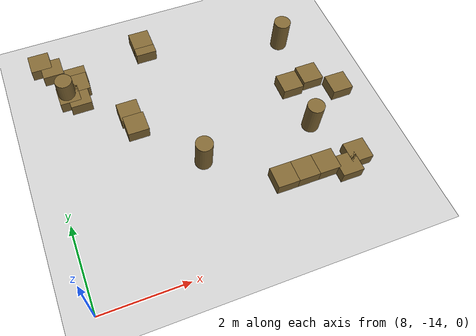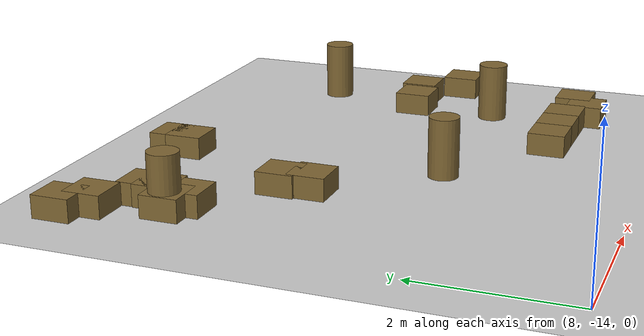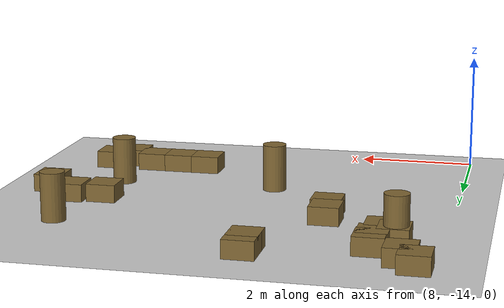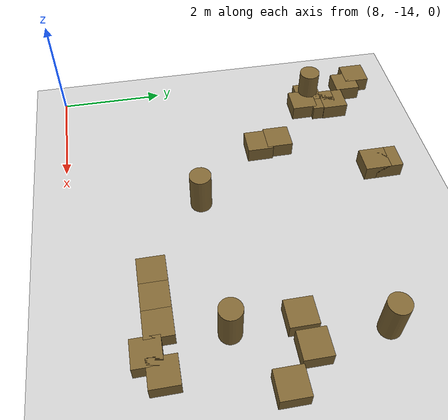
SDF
<sdf version="1.7">
 <world name="default">
  <model name="ground_plane">
   <static>1</static>
   <link name="link">
    <collision name="collision">
     <geometry><plane><normal>0 0 1</normal><size>100 100</size></plane></geometry>
     <surface><friction><ode><mu>100</mu><mu2>50</mu2></ode></friction></surface>
    </collision>
    <visual name="visual">
     <cast_shadows>0</cast_shadows>
     <geometry><plane><normal>0 0 1</normal><size>100 100</size></plane></geometry>
     <material>
      <script><uri>file://media/materials/scripts/gazebo.material</uri><name>Gazebo/Grey</name></script>
     </material>
    </visual>
   </link>
  </model>
  <model name="mini_cylinder_0_clone_0_clone_0">
   <link name="link">
    <inertial>
     <mass>1</mass>
     <inertia><ixx>0.145833</ixx><ixy>0</ixy><ixz>0</ixz><iyy>0.145833</iyy><iyz>0</iyz><izz>0.125</izz></inertia>
    </inertial>
    <visual name="visual">
     <geometry><cylinder><radius>0.2</radius><length>0.8</length></cylinder></geometry>
     <material>
      <script><name>Gazebo/Grey</name><uri>file://media/materials/scripts/gazebo.material</uri></script>
      <shader type="vertex"><normal_map>__default__</normal_map></shader>
      <ambient>0.5 0.4 0.2 1</ambient>
      <diffuse>0.7 0.7 0.7 1</diffuse>
      <specular>0.01 0.01 0.01 1</specular>
      <emissive>0 0 0 1</emissive>
     </material>
    </visual>
    <collision name="collision">
     <geometry><cylinder><radius>0.2</radius><length>0.8</length></cylinder></geometry>
     <surface>
      <friction>
       <ode><mu>1</mu><mu2>1</mu2><fdir1>0 0 0</fdir1><slip1>0</slip1><slip2>0</slip2></ode>
       <torsional>
        <coefficient>1</coefficient>
        <patch_radius>0</patch_radius>
        <surface_radius>0</surface_radius>
        <use_patch_radius>1</use_patch_radius>
        <ode><slip>0</slip></ode>
       </torsional>
      </friction>
      <bounce><restitution_coefficient>0</restitution_coefficient><threshold>1e+06</threshold></bounce>
      <contact>
       <collide_without_contact>0</collide_without_contact>
       <collide_without_contact_bitmask>1</collide_without_contact_bitmask>
       <collide_bitmask>1</collide_bitmask>
       <ode>
        <soft_cfm>0</soft_cfm>
        <soft_erp>0.2</soft_erp>
        <kp>1e+13</kp>
        <kd>1</kd>
        <max_vel>0.01</max_vel>
        <min_depth>0</min_depth>
       </ode>
       <bullet>
        <split_impulse>1</split_impulse>
        <split_impulse_penetration_threshold>-0.01</split_impulse_penetration_threshold>
        <soft_cfm>0</soft_cfm>
        <soft_erp>0.2</soft_erp>
        <kp>1e+13</kp>
        <kd>1</kd>
       </bullet>
      </contact>
     </surface>
    </collision>
   </link>
   <static>1</static>
   <pose>8.7545 -8.82263 0.4 0 -0 0</pose>
  </model>
  <model name="mini_cylinder_0_clone_0_clone_1">
   <link name="link">
    <inertial>
     <mass>1</mass>
     <inertia><ixx>0.145833</ixx><ixy>0</ixy><ixz>0</ixz><iyy>0.145833</iyy><iyz>0</iyz><izz>0.125</izz></inertia>
    </inertial>
    <visual name="visual">
     <geometry><cylinder><radius>0.2</radius><length>0.8</length></cylinder></geometry>
     <material>
      <script><name>Gazebo/Grey</name><uri>file://media/materials/scripts/gazebo.material</uri></script>
      <shader type="vertex"><normal_map>__default__</normal_map></shader>
      <ambient>0.5 0.4 0.2 1</ambient>
      <diffuse>0.7 0.7 0.7 1</diffuse>
      <specular>0.01 0.01 0.01 1</specular>
      <emissive>0 0 0 1</emissive>
     </material>
    </visual>
    <collision name="collision">
     <geometry><cylinder><radius>0.2</radius><length>0.8</length></cylinder></geometry>
     <surface>
      <friction>
       <ode><mu>1</mu><mu2>1</mu2><fdir1>0 0 0</fdir1><slip1>0</slip1><slip2>0</slip2></ode>
       <torsional>
        <coefficient>1</coefficient>
        <patch_radius>0</patch_radius>
        <surface_radius>0</surface_radius>
        <use_patch_radius>1</use_patch_radius>
        <ode><slip>0</slip></ode>
       </torsional>
      </friction>
      <bounce><restitution_coefficient>0</restitution_coefficient><threshold>1e+06</threshold></bounce>
      <contact>
       <collide_without_contact>0</collide_without_contact>
       <collide_without_contact_bitmask>1</collide_without_contact_bitmask>
       <collide_bitmask>1</collide_bitmask>
       <ode>
        <soft_cfm>0</soft_cfm>
        <soft_erp>0.2</soft_erp>
        <kp>1e+13</kp>
        <kd>1</kd>
        <max_vel>0.01</max_vel>
        <min_depth>0</min_depth>
       </ode>
       <bullet>
        <split_impulse>1</split_impulse>
        <split_impulse_penetration_threshold>-0.01</split_impulse_penetration_threshold>
        <soft_cfm>0</soft_cfm>
        <soft_erp>0.2</soft_erp>
        <kp>1e+13</kp>
        <kd>1</kd>
       </bullet>
      </contact>
     </surface>
    </collision>
   </link>
   <static>1</static>
   <pose>14.2436 -8.91515 0.4 0 -0 0</pose>
  </model>
  <model name="mini_cylinder_0_clone_0_clone_2">
   <link name="link">
    <inertial>
     <mass>1</mass>
     <inertia><ixx>0.145833</ixx><ixy>0</ixy><ixz>0</ixz><iyy>0.145833</iyy><iyz>0</iyz><izz>0.125</izz></inertia>
    </inertial>
    <visual name="visual">
     <geometry><cylinder><radius>0.2</radius><length>0.8</length></cylinder></geometry>
     <material>
      <script><name>Gazebo/Grey</name><uri>file://media/materials/scripts/gazebo.material</uri></script>
      <shader type="vertex"><normal_map>__default__</normal_map></shader>
      <ambient>0.5 0.4 0.2 1</ambient>
      <diffuse>0.7 0.7 0.7 1</diffuse>
      <specular>0.01 0.01 0.01 1</specular>
      <emissive>0 0 0 1</emissive>
     </material>
    </visual>
    <collision name="collision">
     <geometry><cylinder><radius>0.2</radius><length>0.8</length></cylinder></geometry>
     <surface>
      <friction>
       <ode><mu>1</mu><mu2>1</mu2><fdir1>0 0 0</fdir1><slip1>0</slip1><slip2>0</slip2></ode>
       <torsional>
        <coefficient>1</coefficient>
        <patch_radius>0</patch_radius>
        <surface_radius>0</surface_radius>
        <use_patch_radius>1</use_patch_radius>
        <ode><slip>0</slip></ode>
       </torsional>
      </friction>
      <bounce><restitution_coefficient>0</restitution_coefficient><threshold>1e+06</threshold></bounce>
      <contact>
       <collide_without_contact>0</collide_without_contact>
       <collide_without_contact_bitmask>1</collide_without_contact_bitmask>
       <collide_bitmask>1</collide_bitmask>
       <ode>
        <soft_cfm>0</soft_cfm>
        <soft_erp>0.2</soft_erp>
        <kp>1e+13</kp>
        <kd>1</kd>
        <max_vel>0.01</max_vel>
        <min_depth>0</min_depth>
       </ode>
       <bullet>
        <split_impulse>1</split_impulse>
        <split_impulse_penetration_threshold>-0.01</split_impulse_penetration_threshold>
        <soft_cfm>0</soft_cfm>
        <soft_erp>0.2</soft_erp>
        <kp>1e+13</kp>
        <kd>1</kd>
       </bullet>
      </contact>
     </surface>
    </collision>
   </link>
   <static>1</static>
   <pose>13.8924 -11.4476 0.4 0 -0 0</pose>
  </model>
  <model name="mini_box_clone_clone_3_clone_0">
   <link name="link">
    <inertial>
     <mass>1</mass>
     <inertia>
      <ixx>0.166667</ixx>
      <ixy>0</ixy>
      <ixz>0</ixz>
      <iyy>0.166667</iyy>
      <iyz>0</iyz>
      <izz>0.166667</izz>
     </inertia>
    </inertial>
    <visual name="visual">
     <geometry><box><size>0.5 0.5 0.3</size></box></geometry>
     <material>
      <script><name>Gazebo/Grey</name><uri>file://media/materials/scripts/gazebo.material</uri></script>
      <shader type="vertex"><normal_map>__default__</normal_map></shader>
      <ambient>0.5 0.4 0.2 1</ambient>
      <diffuse>0.7 0.7 0.7 1</diffuse>
      <specular>0.01 0.01 0.01 1</specular>
      <emissive>0 0 0 1</emissive>
     </material>
    </visual>
    <collision name="collision">
     <geometry><box><size>0.5 0.5 0.3</size></box></geometry>
     <surface>
      <friction>
       <ode><mu>1</mu><mu2>1</mu2><fdir1>0 0 0</fdir1><slip1>0</slip1><slip2>0</slip2></ode>
       <torsional>
        <coefficient>1</coefficient>
        <patch_radius>0</patch_radius>
        <surface_radius>0</surface_radius>
        <use_patch_radius>1</use_patch_radius>
        <ode><slip>0</slip></ode>
       </torsional>
      </friction>
      <bounce><restitution_coefficient>0</restitution_coefficient><threshold>1e+06</threshold></bounce>
      <contact>
       <collide_without_contact>0</collide_without_contact>
       <collide_without_contact_bitmask>1</collide_without_contact_bitmask>
       <collide_bitmask>1</collide_bitmask>
       <ode>
        <soft_cfm>0</soft_cfm>
        <soft_erp>0.2</soft_erp>
        <kp>1e+13</kp>
        <kd>1</kd>
        <max_vel>0.01</max_vel>
        <min_depth>0</min_depth>
       </ode>
       <bullet>
        <split_impulse>1</split_impulse>
        <split_impulse_penetration_threshold>-0.01</split_impulse_penetration_threshold>
        <soft_cfm>0</soft_cfm>
        <soft_erp>0.2</soft_erp>
        <kp>1e+13</kp>
        <kd>1</kd>
       </bullet>
      </contact>
     </surface>
    </collision>
   </link>
   <static>1</static>
   <pose>10.0339 -10.1728 0.15 0 -0 0</pose>
  </model>
  <model name="mini_box_clone_clone_3_clone_1">
   <link name="link">
    <inertial>
     <mass>1</mass>
     <inertia>
      <ixx>0.166667</ixx>
      <ixy>0</ixy>
      <ixz>0</ixz>
      <iyy>0.166667</iyy>
      <iyz>0</iyz>
      <izz>0.166667</izz>
     </inertia>
    </inertial>
    <visual name="visual">
     <geometry><box><size>0.5 0.5 0.3</size></box></geometry>
     <material>
      <script><name>Gazebo/Grey</name><uri>file://media/materials/scripts/gazebo.material</uri></script>
      <shader type="vertex"><normal_map>__default__</normal_map></shader>
      <ambient>0.5 0.4 0.2 1</ambient>
      <diffuse>0.7 0.7 0.7 1</diffuse>
      <specular>0.01 0.01 0.01 1</specular>
      <emissive>0 0 0 1</emissive>
     </material>
    </visual>
    <collision name="collision">
     <geometry><box><size>0.5 0.5 0.3</size></box></geometry>
     <surface>
      <friction>
       <ode><mu>1</mu><mu2>1</mu2><fdir1>0 0 0</fdir1><slip1>0</slip1><slip2>0</slip2></ode>
       <torsional>
        <coefficient>1</coefficient>
        <patch_radius>0</patch_radius>
        <surface_radius>0</surface_radius>
        <use_patch_radius>1</use_patch_radius>
        <ode><slip>0</slip></ode>
       </torsional>
      </friction>
      <bounce><restitution_coefficient>0</restitution_coefficient><threshold>1e+06</threshold></bounce>
      <contact>
       <collide_without_contact>0</collide_without_contact>
       <collide_without_contact_bitmask>1</collide_without_contact_bitmask>
       <collide_bitmask>1</collide_bitmask>
       <ode>
        <soft_cfm>0</soft_cfm>
        <soft_erp>0.2</soft_erp>
        <kp>1e+13</kp>
        <kd>1</kd>
        <max_vel>0.01</max_vel>
        <min_depth>0</min_depth>
       </ode>
       <bullet>
        <split_impulse>1</split_impulse>
        <split_impulse_penetration_threshold>-0.01</split_impulse_penetration_threshold>
        <soft_cfm>0</soft_cfm>
        <soft_erp>0.2</soft_erp>
        <kp>1e+13</kp>
        <kd>1</kd>
       </bullet>
      </contact>
     </surface>
    </collision>
   </link>
   <static>1</static>
   <pose>14.4187 -10.2264 0.15 0 -0 0</pose>
  </model>
  <model name="mini_cylinder_0_clone_0_clone_clone_0">
   <link name="link">
    <inertial>
     <mass>1</mass>
     <inertia><ixx>0.145833</ixx><ixy>0</ixy><ixz>0</ixz><iyy>0.145833</iyy><iyz>0</iyz><izz>0.125</izz></inertia>
    </inertial>
    <visual name="visual">
     <geometry><cylinder><radius>0.2</radius><length>0.8</length></cylinder></geometry>
     <material>
      <script><name>Gazebo/Grey</name><uri>file://media/materials/scripts/gazebo.material</uri></script>
      <shader type="vertex"><normal_map>__default__</normal_map></shader>
      <ambient>0.5 0.4 0.2 1</ambient>
      <diffuse>0.7 0.7 0.7 1</diffuse>
      <specular>0.01 0.01 0.01 1</specular>
      <emissive>0 0 0 1</emissive>
     </material>
    </visual>
    <collision name="collision">
     <geometry><cylinder><radius>0.2</radius><length>0.8</length></cylinder></geometry>
     <surface>
      <friction>
       <ode><mu>1</mu><mu2>1</mu2><fdir1>0 0 0</fdir1><slip1>0</slip1><slip2>0</slip2></ode>
       <torsional>
        <coefficient>1</coefficient>
        <patch_radius>0</patch_radius>
        <surface_radius>0</surface_radius>
        <use_patch_radius>1</use_patch_radius>
        <ode><slip>0</slip></ode>
       </torsional>
      </friction>
      <bounce><restitution_coefficient>0</restitution_coefficient><threshold>1e+06</threshold></bounce>
      <contact>
       <collide_without_contact>0</collide_without_contact>
       <collide_without_contact_bitmask>1</collide_without_contact_bitmask>
       <collide_bitmask>1</collide_bitmask>
       <ode>
        <soft_cfm>0</soft_cfm>
        <soft_erp>0.2</soft_erp>
        <kp>1e+13</kp>
        <kd>1</kd>
        <max_vel>0.01</max_vel>
        <min_depth>0</min_depth>
       </ode>
       <bullet>
        <split_impulse>1</split_impulse>
        <split_impulse_penetration_threshold>-0.01</split_impulse_penetration_threshold>
        <soft_cfm>0</soft_cfm>
        <soft_erp>0.2</soft_erp>
        <kp>1e+13</kp>
        <kd>1</kd>
       </bullet>
      </contact>
     </surface>
    </collision>
   </link>
   <static>1</static>
   <pose>11.1967 -11.5076 0.4 0 -0 0</pose>
  </model>
  <model name="mini_box_clone_clone_0_clone_8">
   <link name="link">
    <inertial>
     <mass>1</mass>
     <inertia>
      <ixx>0.166667</ixx>
      <ixy>0</ixy>
      <ixz>0</ixz>
      <iyy>0.166667</iyy>
      <iyz>0</iyz>
      <izz>0.166667</izz>
     </inertia>
    </inertial>
    <visual name="visual">
     <geometry><box><size>0.5 0.5 0.3</size></box></geometry>
     <material>
      <script><name>Gazebo/Grey</name><uri>file://media/materials/scripts/gazebo.material</uri></script>
      <shader type="vertex"><normal_map>__default__</normal_map></shader>
      <ambient>0.5 0.4 0.2 1</ambient>
      <diffuse>0.7 0.7 0.7 1</diffuse>
      <specular>0.01 0.01 0.01 1</specular>
      <emissive>0 0 0 1</emissive>
     </material>
    </visual>
    <collision name="collision">
     <geometry><box><size>0.5 0.5 0.3</size></box></geometry>
     <surface>
      <friction>
       <ode><mu>1</mu><mu2>1</mu2><fdir1>0 0 0</fdir1><slip1>0</slip1><slip2>0</slip2></ode>
       <torsional>
        <coefficient>1</coefficient>
        <patch_radius>0</patch_radius>
        <surface_radius>0</surface_radius>
        <use_patch_radius>1</use_patch_radius>
        <ode><slip>0</slip></ode>
       </torsional>
      </friction>
      <bounce><restitution_coefficient>0</restitution_coefficient><threshold>1e+06</threshold></bounce>
      <contact>
       <collide_without_contact>0</collide_without_contact>
       <collide_without_contact_bitmask>1</collide_without_contact_bitmask>
       <collide_bitmask>1</collide_bitmask>
       <ode>
        <soft_cfm>0</soft_cfm>
        <soft_erp>0.2</soft_erp>
        <kp>1e+13</kp>
        <kd>1</kd>
        <max_vel>0.01</max_vel>
        <min_depth>0</min_depth>
       </ode>
       <bullet>
        <split_impulse>1</split_impulse>
        <split_impulse_penetration_threshold>-0.01</split_impulse_penetration_threshold>
        <soft_cfm>0</soft_cfm>
        <soft_erp>0.2</soft_erp>
        <kp>1e+13</kp>
        <kd>1</kd>
       </bullet>
      </contact>
     </surface>
    </collision>
   </link>
   <static>1</static>
   <pose>10.8996 -7.81183 0.15 0 -0 0</pose>
  </model>
  <model name="mini_box_clone_clone_0_clone_9">
   <link name="link">
    <inertial>
     <mass>1</mass>
     <inertia>
      <ixx>0.166667</ixx>
      <ixy>0</ixy>
      <ixz>0</ixz>
      <iyy>0.166667</iyy>
      <iyz>0</iyz>
      <izz>0.166667</izz>
     </inertia>
    </inertial>
    <visual name="visual">
     <geometry><box><size>0.5 0.5 0.3</size></box></geometry>
     <material>
      <script><name>Gazebo/Grey</name><uri>file://media/materials/scripts/gazebo.material</uri></script>
      <shader type="vertex"><normal_map>__default__</normal_map></shader>
      <ambient>0.5 0.4 0.2 1</ambient>
      <diffuse>0.7 0.7 0.7 1</diffuse>
      <specular>0.01 0.01 0.01 1</specular>
      <emissive>0 0 0 1</emissive>
     </material>
    </visual>
    <collision name="collision">
     <geometry><box><size>0.5 0.5 0.3</size></box></geometry>
     <surface>
      <friction>
       <ode><mu>1</mu><mu2>1</mu2><fdir1>0 0 0</fdir1><slip1>0</slip1><slip2>0</slip2></ode>
       <torsional>
        <coefficient>1</coefficient>
        <patch_radius>0</patch_radius>
        <surface_radius>0</surface_radius>
        <use_patch_radius>1</use_patch_radius>
        <ode><slip>0</slip></ode>
       </torsional>
      </friction>
      <bounce><restitution_coefficient>0</restitution_coefficient><threshold>1e+06</threshold></bounce>
      <contact>
       <collide_without_contact>0</collide_without_contact>
       <collide_without_contact_bitmask>1</collide_without_contact_bitmask>
       <collide_bitmask>1</collide_bitmask>
       <ode>
        <soft_cfm>0</soft_cfm>
        <soft_erp>0.2</soft_erp>
        <kp>1e+13</kp>
        <kd>1</kd>
        <max_vel>0.01</max_vel>
        <min_depth>0</min_depth>
       </ode>
       <bullet>
        <split_impulse>1</split_impulse>
        <split_impulse_penetration_threshold>-0.01</split_impulse_penetration_threshold>
        <soft_cfm>0</soft_cfm>
        <soft_erp>0.2</soft_erp>
        <kp>1e+13</kp>
        <kd>1</kd>
       </bullet>
      </contact>
     </surface>
    </collision>
   </link>
   <static>1</static>
   <pose>10.8996 -8.0453 0.15 0 -0 0</pose>
  </model>
  <model name="mini_box_clone_clone_0_clone_10">
   <link name="link">
    <inertial>
     <mass>1</mass>
     <inertia>
      <ixx>0.166667</ixx>
      <ixy>0</ixy>
      <ixz>0</ixz>
      <iyy>0.166667</iyy>
      <iyz>0</iyz>
      <izz>0.166667</izz>
     </inertia>
    </inertial>
    <visual name="visual">
     <geometry><box><size>0.5 0.5 0.3</size></box></geometry>
     <material>
      <script><name>Gazebo/Grey</name><uri>file://media/materials/scripts/gazebo.material</uri></script>
      <shader type="vertex"><normal_map>__default__</normal_map></shader>
      <ambient>0.5 0.4 0.2 1</ambient>
      <diffuse>0.7 0.7 0.7 1</diffuse>
      <specular>0.01 0.01 0.01 1</specular>
      <emissive>0 0 0 1</emissive>
     </material>
    </visual>
    <collision name="collision">
     <geometry><box><size>0.5 0.5 0.3</size></box></geometry>
     <surface>
      <friction>
       <ode><mu>1</mu><mu2>1</mu2><fdir1>0 0 0</fdir1><slip1>0</slip1><slip2>0</slip2></ode>
       <torsional>
        <coefficient>1</coefficient>
        <patch_radius>0</patch_radius>
        <surface_radius>0</surface_radius>
        <use_patch_radius>1</use_patch_radius>
        <ode><slip>0</slip></ode>
       </torsional>
      </friction>
      <bounce><restitution_coefficient>0</restitution_coefficient><threshold>1e+06</threshold></bounce>
      <contact>
       <collide_without_contact>0</collide_without_contact>
       <collide_without_contact_bitmask>1</collide_without_contact_bitmask>
       <collide_bitmask>1</collide_bitmask>
       <ode>
        <soft_cfm>0</soft_cfm>
        <soft_erp>0.2</soft_erp>
        <kp>1e+13</kp>
        <kd>1</kd>
        <max_vel>0.01</max_vel>
        <min_depth>0</min_depth>
       </ode>
       <bullet>
        <split_impulse>1</split_impulse>
        <split_impulse_penetration_threshold>-0.01</split_impulse_penetration_threshold>
        <soft_cfm>0</soft_cfm>
        <soft_erp>0.2</soft_erp>
        <kp>1e+13</kp>
        <kd>1</kd>
       </bullet>
      </contact>
     </surface>
    </collision>
   </link>
   <static>1</static>
   <pose>8.78441 -8.84203 0.15 0 -0 0</pose>
  </model>
  <model name="mini_box_clone_clone_0_clone_11">
   <link name="link">
    <inertial>
     <mass>1</mass>
     <inertia>
      <ixx>0.166667</ixx>
      <ixy>0</ixy>
      <ixz>0</ixz>
      <iyy>0.166667</iyy>
      <iyz>0</iyz>
      <izz>0.166667</izz>
     </inertia>
    </inertial>
    <visual name="visual">
     <geometry><box><size>0.5 0.5 0.3</size></box></geometry>
     <material>
      <script><name>Gazebo/Grey</name><uri>file://media/materials/scripts/gazebo.material</uri></script>
      <shader type="vertex"><normal_map>__default__</normal_map></shader>
      <ambient>0.5 0.4 0.2 1</ambient>
      <diffuse>0.7 0.7 0.7 1</diffuse>
      <specular>0.01 0.01 0.01 1</specular>
      <emissive>0 0 0 1</emissive>
     </material>
    </visual>
    <collision name="collision">
     <geometry><box><size>0.5 0.5 0.3</size></box></geometry>
     <surface>
      <friction>
       <ode><mu>1</mu><mu2>1</mu2><fdir1>0 0 0</fdir1><slip1>0</slip1><slip2>0</slip2></ode>
       <torsional>
        <coefficient>1</coefficient>
        <patch_radius>0</patch_radius>
        <surface_radius>0</surface_radius>
        <use_patch_radius>1</use_patch_radius>
        <ode><slip>0</slip></ode>
       </torsional>
      </friction>
      <bounce><restitution_coefficient>0</restitution_coefficient><threshold>1e+06</threshold></bounce>
      <contact>
       <collide_without_contact>0</collide_without_contact>
       <collide_without_contact_bitmask>1</collide_without_contact_bitmask>
       <collide_bitmask>1</collide_bitmask>
       <ode>
        <soft_cfm>0</soft_cfm>
        <soft_erp>0.2</soft_erp>
        <kp>1e+13</kp>
        <kd>1</kd>
        <max_vel>0.01</max_vel>
        <min_depth>0</min_depth>
       </ode>
       <bullet>
        <split_impulse>1</split_impulse>
        <split_impulse_penetration_threshold>-0.01</split_impulse_penetration_threshold>
        <soft_cfm>0</soft_cfm>
        <soft_erp>0.2</soft_erp>
        <kp>1e+13</kp>
        <kd>1</kd>
       </bullet>
      </contact>
     </surface>
    </collision>
   </link>
   <static>1</static>
   <pose>9 -9 0.15 0 -0 0</pose>
  </model>
  <model name="mini_box_clone_clone_0_clone_12">
   <link name="link">
    <inertial>
     <mass>1</mass>
     <inertia>
      <ixx>0.166667</ixx>
      <ixy>0</ixy>
      <ixz>0</ixz>
      <iyy>0.166667</iyy>
      <iyz>0</iyz>
      <izz>0.166667</izz>
     </inertia>
    </inertial>
    <visual name="visual">
     <geometry><box><size>0.5 0.5 0.3</size></box></geometry>
     <material>
      <script><name>Gazebo/Grey</name><uri>file://media/materials/scripts/gazebo.material</uri></script>
      <shader type="vertex"><normal_map>__default__</normal_map></shader>
      <ambient>0.5 0.4 0.2 1</ambient>
      <diffuse>0.7 0.7 0.7 1</diffuse>
      <specular>0.01 0.01 0.01 1</specular>
      <emissive>0 0 0 1</emissive>
     </material>
    </visual>
    <collision name="collision">
     <geometry><box><size>0.5 0.5 0.3</size></box></geometry>
     <surface>
      <friction>
       <ode><mu>1</mu><mu2>1</mu2><fdir1>0 0 0</fdir1><slip1>0</slip1><slip2>0</slip2></ode>
       <torsional>
        <coefficient>1</coefficient>
        <patch_radius>0</patch_radius>
        <surface_radius>0</surface_radius>
        <use_patch_radius>1</use_patch_radius>
        <ode><slip>0</slip></ode>
       </torsional>
      </friction>
      <bounce><restitution_coefficient>0</restitution_coefficient><threshold>1e+06</threshold></bounce>
      <contact>
       <collide_without_contact>0</collide_without_contact>
       <collide_without_contact_bitmask>1</collide_without_contact_bitmask>
       <collide_bitmask>1</collide_bitmask>
       <ode>
        <soft_cfm>0</soft_cfm>
        <soft_erp>0.2</soft_erp>
        <kp>1e+13</kp>
        <kd>1</kd>
        <max_vel>0.01</max_vel>
        <min_depth>0</min_depth>
       </ode>
       <bullet>
        <split_impulse>1</split_impulse>
        <split_impulse_penetration_threshold>-0.01</split_impulse_penetration_threshold>
        <soft_cfm>0</soft_cfm>
        <soft_erp>0.2</soft_erp>
        <kp>1e+13</kp>
        <kd>1</kd>
       </bullet>
      </contact>
     </surface>
    </collision>
   </link>
   <static>1</static>
   <pose>9.07285 -8.58094 0.15 0 -0 0</pose>
  </model>
  <model name="mini_box_clone_clone_0_clone_13">
   <link name="link">
    <inertial>
     <mass>1</mass>
     <inertia>
      <ixx>0.166667</ixx>
      <ixy>0</ixy>
      <ixz>0</ixz>
      <iyy>0.166667</iyy>
      <iyz>0</iyz>
      <izz>0.166667</izz>
     </inertia>
    </inertial>
    <visual name="visual">
     <geometry><box><size>0.5 0.5 0.3</size></box></geometry>
     <material>
      <script><name>Gazebo/Grey</name><uri>file://media/materials/scripts/gazebo.material</uri></script>
      <shader type="vertex"><normal_map>__default__</normal_map></shader>
      <ambient>0.5 0.4 0.2 1</ambient>
      <diffuse>0.7 0.7 0.7 1</diffuse>
      <specular>0.01 0.01 0.01 1</specular>
      <emissive>0 0 0 1</emissive>
     </material>
    </visual>
    <collision name="collision">
     <geometry><box><size>0.5 0.5 0.3</size></box></geometry>
     <surface>
      <friction>
       <ode><mu>1</mu><mu2>1</mu2><fdir1>0 0 0</fdir1><slip1>0</slip1><slip2>0</slip2></ode>
       <torsional>
        <coefficient>1</coefficient>
        <patch_radius>0</patch_radius>
        <surface_radius>0</surface_radius>
        <use_patch_radius>1</use_patch_radius>
        <ode><slip>0</slip></ode>
       </torsional>
      </friction>
      <bounce><restitution_coefficient>0</restitution_coefficient><threshold>1e+06</threshold></bounce>
      <contact>
       <collide_without_contact>0</collide_without_contact>
       <collide_without_contact_bitmask>1</collide_without_contact_bitmask>
       <collide_bitmask>1</collide_bitmask>
       <ode>
        <soft_cfm>0</soft_cfm>
        <soft_erp>0.2</soft_erp>
        <kp>1e+13</kp>
        <kd>1</kd>
        <max_vel>0.01</max_vel>
        <min_depth>0</min_depth>
       </ode>
       <bullet>
        <split_impulse>1</split_impulse>
        <split_impulse_penetration_threshold>-0.01</split_impulse_penetration_threshold>
        <soft_cfm>0</soft_cfm>
        <soft_erp>0.2</soft_erp>
        <kp>1e+13</kp>
        <kd>1</kd>
       </bullet>
      </contact>
     </surface>
    </collision>
   </link>
   <static>1</static>
   <pose>9.08646 -8.36108 0.15 0 -0 0</pose>
  </model>
  <model name="mini_box_clone_clone_0_clone_14">
   <link name="link">
    <inertial>
     <mass>1</mass>
     <inertia>
      <ixx>0.166667</ixx>
      <ixy>0</ixy>
      <ixz>0</ixz>
      <iyy>0.166667</iyy>
      <iyz>0</iyz>
      <izz>0.166667</izz>
     </inertia>
    </inertial>
    <visual name="visual">
     <geometry><box><size>0.5 0.5 0.3</size></box></geometry>
     <material>
      <script><name>Gazebo/Grey</name><uri>file://media/materials/scripts/gazebo.material</uri></script>
      <shader type="vertex"><normal_map>__default__</normal_map></shader>
      <ambient>0.5 0.4 0.2 1</ambient>
      <diffuse>0.7 0.7 0.7 1</diffuse>
      <specular>0.01 0.01 0.01 1</specular>
      <emissive>0 0 0 1</emissive>
     </material>
    </visual>
    <collision name="collision">
     <geometry><box><size>0.5 0.5 0.3</size></box></geometry>
     <surface>
      <friction>
       <ode><mu>1</mu><mu2>1</mu2><fdir1>0 0 0</fdir1><slip1>0</slip1><slip2>0</slip2></ode>
       <torsional>
        <coefficient>1</coefficient>
        <patch_radius>0</patch_radius>
        <surface_radius>0</surface_radius>
        <use_patch_radius>1</use_patch_radius>
        <ode><slip>0</slip></ode>
       </torsional>
      </friction>
      <bounce><restitution_coefficient>0</restitution_coefficient><threshold>1e+06</threshold></bounce>
      <contact>
       <collide_without_contact>0</collide_without_contact>
       <collide_without_contact_bitmask>1</collide_without_contact_bitmask>
       <collide_bitmask>1</collide_bitmask>
       <ode>
        <soft_cfm>0</soft_cfm>
        <soft_erp>0.2</soft_erp>
        <kp>1e+13</kp>
        <kd>1</kd>
        <max_vel>0.01</max_vel>
        <min_depth>0</min_depth>
       </ode>
       <bullet>
        <split_impulse>1</split_impulse>
        <split_impulse_penetration_threshold>-0.01</split_impulse_penetration_threshold>
        <soft_cfm>0</soft_cfm>
        <soft_erp>0.2</soft_erp>
        <kp>1e+13</kp>
        <kd>1</kd>
       </bullet>
      </contact>
     </surface>
    </collision>
   </link>
   <static>1</static>
   <pose>9.99311 -9.77586 0.15 0 -0 0</pose>
  </model>
  <model name="mini_box_clone_clone_0_clone_18">
   <link name="link">
    <inertial>
     <mass>1</mass>
     <inertia>
      <ixx>0.166667</ixx>
      <ixy>0</ixy>
      <ixz>0</ixz>
      <iyy>0.166667</iyy>
      <iyz>0</iyz>
      <izz>0.166667</izz>
     </inertia>
    </inertial>
    <visual name="visual">
     <geometry><box><size>0.5 0.5 0.3</size></box></geometry>
     <material>
      <script><name>Gazebo/Grey</name><uri>file://media/materials/scripts/gazebo.material</uri></script>
      <shader type="vertex"><normal_map>__default__</normal_map></shader>
      <ambient>0.5 0.4 0.2 1</ambient>
      <diffuse>0.7 0.7 0.7 1</diffuse>
      <specular>0.01 0.01 0.01 1</specular>
      <emissive>0 0 0 1</emissive>
     </material>
    </visual>
    <collision name="collision">
     <geometry><box><size>0.5 0.5 0.3</size></box></geometry>
     <surface>
      <friction>
       <ode><mu>1</mu><mu2>1</mu2><fdir1>0 0 0</fdir1><slip1>0</slip1><slip2>0</slip2></ode>
       <torsional>
        <coefficient>1</coefficient>
        <patch_radius>0</patch_radius>
        <surface_radius>0</surface_radius>
        <use_patch_radius>1</use_patch_radius>
        <ode><slip>0</slip></ode>
       </torsional>
      </friction>
      <bounce><restitution_coefficient>0</restitution_coefficient><threshold>1e+06</threshold></bounce>
      <contact>
       <collide_without_contact>0</collide_without_contact>
       <collide_without_contact_bitmask>1</collide_without_contact_bitmask>
       <collide_bitmask>1</collide_bitmask>
       <ode>
        <soft_cfm>0</soft_cfm>
        <soft_erp>0.2</soft_erp>
        <kp>1e+13</kp>
        <kd>1</kd>
        <max_vel>0.01</max_vel>
        <min_depth>0</min_depth>
       </ode>
       <bullet>
        <split_impulse>1</split_impulse>
        <split_impulse_penetration_threshold>-0.01</split_impulse_penetration_threshold>
        <soft_cfm>0</soft_cfm>
        <soft_erp>0.2</soft_erp>
        <kp>1e+13</kp>
        <kd>1</kd>
       </bullet>
      </contact>
     </surface>
    </collision>
   </link>
   <static>1</static>
   <pose>8.34487 -7.66067 0.15 0 -0 0</pose>
  </model>
  <model name="mini_box_clone_clone_0_clone_19">
   <link name="link">
    <inertial>
     <mass>1</mass>
     <inertia>
      <ixx>0.166667</ixx>
      <ixy>0</ixy>
      <ixz>0</ixz>
      <iyy>0.166667</iyy>
      <iyz>0</iyz>
      <izz>0.166667</izz>
     </inertia>
    </inertial>
    <visual name="visual">
     <geometry><box><size>0.5 0.5 0.3</size></box></geometry>
     <material>
      <script><name>Gazebo/Grey</name><uri>file://media/materials/scripts/gazebo.material</uri></script>
      <shader type="vertex"><normal_map>__default__</normal_map></shader>
      <ambient>0.5 0.4 0.2 1</ambient>
      <diffuse>0.7 0.7 0.7 1</diffuse>
      <specular>0.01 0.01 0.01 1</specular>
      <emissive>0 0 0 1</emissive>
     </material>
    </visual>
    <collision name="collision">
     <geometry><box><size>0.5 0.5 0.3</size></box></geometry>
     <surface>
      <friction>
       <ode><mu>1</mu><mu2>1</mu2><fdir1>0 0 0</fdir1><slip1>0</slip1><slip2>0</slip2></ode>
       <torsional>
        <coefficient>1</coefficient>
        <patch_radius>0</patch_radius>
        <surface_radius>0</surface_radius>
        <use_patch_radius>1</use_patch_radius>
        <ode><slip>0</slip></ode>
       </torsional>
      </friction>
      <bounce><restitution_coefficient>0</restitution_coefficient><threshold>1e+06</threshold></bounce>
      <contact>
       <collide_without_contact>0</collide_without_contact>
       <collide_without_contact_bitmask>1</collide_without_contact_bitmask>
       <collide_bitmask>1</collide_bitmask>
       <ode>
        <soft_cfm>0</soft_cfm>
        <soft_erp>0.2</soft_erp>
        <kp>1e+13</kp>
        <kd>1</kd>
        <max_vel>0.01</max_vel>
        <min_depth>0</min_depth>
       </ode>
       <bullet>
        <split_impulse>1</split_impulse>
        <split_impulse_penetration_threshold>-0.01</split_impulse_penetration_threshold>
        <soft_cfm>0</soft_cfm>
        <soft_erp>0.2</soft_erp>
        <kp>1e+13</kp>
        <kd>1</kd>
       </bullet>
      </contact>
     </surface>
    </collision>
   </link>
   <static>1</static>
   <pose>8.57834 -7.9355 0.15 0 -0 0</pose>
  </model>
  <model name="mini_box_clone_clone_0_clone_20">
   <link name="link">
    <inertial>
     <mass>1</mass>
     <inertia>
      <ixx>0.166667</ixx>
      <ixy>0</ixy>
      <ixz>0</ixz>
      <iyy>0.166667</iyy>
      <iyz>0</iyz>
      <izz>0.166667</izz>
     </inertia>
    </inertial>
    <visual name="visual">
     <geometry><box><size>0.5 0.5 0.3</size></box></geometry>
     <material>
      <script><name>Gazebo/Grey</name><uri>file://media/materials/scripts/gazebo.material</uri></script>
      <shader type="vertex"><normal_map>__default__</normal_map></shader>
      <ambient>0.5 0.4 0.2 1</ambient>
      <diffuse>0.7 0.7 0.7 1</diffuse>
      <specular>0.01 0.01 0.01 1</specular>
      <emissive>0 0 0 1</emissive>
     </material>
    </visual>
    <collision name="collision">
     <geometry><box><size>0.5 0.5 0.3</size></box></geometry>
     <surface>
      <friction>
       <ode><mu>1</mu><mu2>1</mu2><fdir1>0 0 0</fdir1><slip1>0</slip1><slip2>0</slip2></ode>
       <torsional>
        <coefficient>1</coefficient>
        <patch_radius>0</patch_radius>
        <surface_radius>0</surface_radius>
        <use_patch_radius>1</use_patch_radius>
        <ode><slip>0</slip></ode>
       </torsional>
      </friction>
      <bounce><restitution_coefficient>0</restitution_coefficient><threshold>1e+06</threshold></bounce>
      <contact>
       <collide_without_contact>0</collide_without_contact>
       <collide_without_contact_bitmask>1</collide_without_contact_bitmask>
       <collide_bitmask>1</collide_bitmask>
       <ode>
        <soft_cfm>0</soft_cfm>
        <soft_erp>0.2</soft_erp>
        <kp>1e+13</kp>
        <kd>1</kd>
        <max_vel>0.01</max_vel>
        <min_depth>0</min_depth>
       </ode>
       <bullet>
        <split_impulse>1</split_impulse>
        <split_impulse_penetration_threshold>-0.01</split_impulse_penetration_threshold>
        <soft_cfm>0</soft_cfm>
        <soft_erp>0.2</soft_erp>
        <kp>1e+13</kp>
        <kd>1</kd>
       </bullet>
      </contact>
     </surface>
    </collision>
   </link>
   <static>1</static>
   <pose>13.8647 -10.3 0.15 0 -0 0</pose>
  </model>
  <model name="mini_box_clone_clone_0_clone_21">
   <link name="link">
    <inertial>
     <mass>1</mass>
     <inertia>
      <ixx>0.166667</ixx>
      <ixy>0</ixy>
      <ixz>0</ixz>
      <iyy>0.166667</iyy>
      <iyz>0</iyz>
      <izz>0.166667</izz>
     </inertia>
    </inertial>
    <visual name="visual">
     <geometry><box><size>0.5 0.5 0.3</size></box></geometry>
     <material>
      <script><name>Gazebo/Grey</name><uri>file://media/materials/scripts/gazebo.material</uri></script>
      <shader type="vertex"><normal_map>__default__</normal_map></shader>
      <ambient>0.5 0.4 0.2 1</ambient>
      <diffuse>0.7 0.7 0.7 1</diffuse>
      <specular>0.01 0.01 0.01 1</specular>
      <emissive>0 0 0 1</emissive>
     </material>
    </visual>
    <collision name="collision">
     <geometry><box><size>0.5 0.5 0.3</size></box></geometry>
     <surface>
      <friction>
       <ode><mu>1</mu><mu2>1</mu2><fdir1>0 0 0</fdir1><slip1>0</slip1><slip2>0</slip2></ode>
       <torsional>
        <coefficient>1</coefficient>
        <patch_radius>0</patch_radius>
        <surface_radius>0</surface_radius>
        <use_patch_radius>1</use_patch_radius>
        <ode><slip>0</slip></ode>
       </torsional>
      </friction>
      <bounce><restitution_coefficient>0</restitution_coefficient><threshold>1e+06</threshold></bounce>
      <contact>
       <collide_without_contact>0</collide_without_contact>
       <collide_without_contact_bitmask>1</collide_without_contact_bitmask>
       <collide_bitmask>1</collide_bitmask>
       <ode>
        <soft_cfm>0</soft_cfm>
        <soft_erp>0.2</soft_erp>
        <kp>1e+13</kp>
        <kd>1</kd>
        <max_vel>0.01</max_vel>
        <min_depth>0</min_depth>
       </ode>
       <bullet>
        <split_impulse>1</split_impulse>
        <split_impulse_penetration_threshold>-0.01</split_impulse_penetration_threshold>
        <soft_cfm>0</soft_cfm>
        <soft_erp>0.2</soft_erp>
        <kp>1e+13</kp>
        <kd>1</kd>
       </bullet>
      </contact>
     </surface>
    </collision>
   </link>
   <static>1</static>
   <pose>14.9587 -10.7231 0.15 0 -0 0</pose>
  </model>
  <model name="mini_box_clone_clone_0_clone_22">
   <link name="link">
    <inertial>
     <mass>1</mass>
     <inertia>
      <ixx>0.166667</ixx>
      <ixy>0</ixy>
      <ixz>0</ixz>
      <iyy>0.166667</iyy>
      <iyz>0</iyz>
      <izz>0.166667</izz>
     </inertia>
    </inertial>
    <visual name="visual">
     <geometry><box><size>0.5 0.5 0.3</size></box></geometry>
     <material>
      <script><name>Gazebo/Grey</name><uri>file://media/materials/scripts/gazebo.material</uri></script>
      <shader type="vertex"><normal_map>__default__</normal_map></shader>
      <ambient>0.5 0.4 0.2 1</ambient>
      <diffuse>0.7 0.7 0.7 1</diffuse>
      <specular>0.01 0.01 0.01 1</specular>
      <emissive>0 0 0 1</emissive>
     </material>
    </visual>
    <collision name="collision">
     <geometry><box><size>0.5 0.5 0.3</size></box></geometry>
     <surface>
      <friction>
       <ode><mu>1</mu><mu2>1</mu2><fdir1>0 0 0</fdir1><slip1>0</slip1><slip2>0</slip2></ode>
       <torsional>
        <coefficient>1</coefficient>
        <patch_radius>0</patch_radius>
        <surface_radius>0</surface_radius>
        <use_patch_radius>1</use_patch_radius>
        <ode><slip>0</slip></ode>
       </torsional>
      </friction>
      <bounce><restitution_coefficient>0</restitution_coefficient><threshold>1e+06</threshold></bounce>
      <contact>
       <collide_without_contact>0</collide_without_contact>
       <collide_without_contact_bitmask>1</collide_without_contact_bitmask>
       <collide_bitmask>1</collide_bitmask>
       <ode>
        <soft_cfm>0</soft_cfm>
        <soft_erp>0.2</soft_erp>
        <kp>1e+13</kp>
        <kd>1</kd>
        <max_vel>0.01</max_vel>
        <min_depth>0</min_depth>
       </ode>
       <bullet>
        <split_impulse>1</split_impulse>
        <split_impulse_penetration_threshold>-0.01</split_impulse_penetration_threshold>
        <soft_cfm>0</soft_cfm>
        <soft_erp>0.2</soft_erp>
        <kp>1e+13</kp>
        <kd>1</kd>
       </bullet>
      </contact>
     </surface>
    </collision>
   </link>
   <static>1</static>
   <pose>12.6707 -12.5631 0.15 0 -0 0</pose>
  </model>
  <model name="mini_box_clone_clone_0_clone_23">
   <link name="link">
    <inertial>
     <mass>1</mass>
     <inertia>
      <ixx>0.166667</ixx>
      <ixy>0</ixy>
      <ixz>0</ixz>
      <iyy>0.166667</iyy>
      <iyz>0</iyz>
      <izz>0.166667</izz>
     </inertia>
    </inertial>
    <visual name="visual">
     <geometry><box><size>0.5 0.5 0.3</size></box></geometry>
     <material>
      <script><name>Gazebo/Grey</name><uri>file://media/materials/scripts/gazebo.material</uri></script>
      <shader type="vertex"><normal_map>__default__</normal_map></shader>
      <ambient>0.5 0.4 0.2 1</ambient>
      <diffuse>0.7 0.7 0.7 1</diffuse>
      <specular>0.01 0.01 0.01 1</specular>
      <emissive>0 0 0 1</emissive>
     </material>
    </visual>
    <collision name="collision">
     <geometry><box><size>0.5 0.5 0.3</size></box></geometry>
     <surface>
      <friction>
       <ode><mu>1</mu><mu2>1</mu2><fdir1>0 0 0</fdir1><slip1>0</slip1><slip2>0</slip2></ode>
       <torsional>
        <coefficient>1</coefficient>
        <patch_radius>0</patch_radius>
        <surface_radius>0</surface_radius>
        <use_patch_radius>1</use_patch_radius>
        <ode><slip>0</slip></ode>
       </torsional>
      </friction>
      <bounce><restitution_coefficient>0</restitution_coefficient><threshold>1e+06</threshold></bounce>
      <contact>
       <collide_without_contact>0</collide_without_contact>
       <collide_without_contact_bitmask>1</collide_without_contact_bitmask>
       <collide_bitmask>1</collide_bitmask>
       <ode>
        <soft_cfm>0</soft_cfm>
        <soft_erp>0.2</soft_erp>
        <kp>1e+13</kp>
        <kd>1</kd>
        <max_vel>0.01</max_vel>
        <min_depth>0</min_depth>
       </ode>
       <bullet>
        <split_impulse>1</split_impulse>
        <split_impulse_penetration_threshold>-0.01</split_impulse_penetration_threshold>
        <soft_cfm>0</soft_cfm>
        <soft_erp>0.2</soft_erp>
        <kp>1e+13</kp>
        <kd>1</kd>
       </bullet>
      </contact>
     </surface>
    </collision>
   </link>
   <static>1</static>
   <pose>13.1687 -12.5631 0.15 0 -0 0</pose>
  </model>
  <model name="mini_box_clone_clone_0_clone_24">
   <link name="link">
    <inertial>
     <mass>1</mass>
     <inertia>
      <ixx>0.166667</ixx>
      <ixy>0</ixy>
      <ixz>0</ixz>
      <iyy>0.166667</iyy>
      <iyz>0</iyz>
      <izz>0.166667</izz>
     </inertia>
    </inertial>
    <visual name="visual">
     <geometry><box><size>0.5 0.5 0.3</size></box></geometry>
     <material>
      <script><name>Gazebo/Grey</name><uri>file://media/materials/scripts/gazebo.material</uri></script>
      <shader type="vertex"><normal_map>__default__</normal_map></shader>
      <ambient>0.5 0.4 0.2 1</ambient>
      <diffuse>0.7 0.7 0.7 1</diffuse>
      <specular>0.01 0.01 0.01 1</specular>
      <emissive>0 0 0 1</emissive>
     </material>
    </visual>
    <collision name="collision">
     <geometry><box><size>0.5 0.5 0.3</size></box></geometry>
     <surface>
      <friction>
       <ode><mu>1</mu><mu2>1</mu2><fdir1>0 0 0</fdir1><slip1>0</slip1><slip2>0</slip2></ode>
       <torsional>
        <coefficient>1</coefficient>
        <patch_radius>0</patch_radius>
        <surface_radius>0</surface_radius>
        <use_patch_radius>1</use_patch_radius>
        <ode><slip>0</slip></ode>
       </torsional>
      </friction>
      <bounce><restitution_coefficient>0</restitution_coefficient><threshold>1e+06</threshold></bounce>
      <contact>
       <collide_without_contact>0</collide_without_contact>
       <collide_without_contact_bitmask>1</collide_without_contact_bitmask>
       <collide_bitmask>1</collide_bitmask>
       <ode>
        <soft_cfm>0</soft_cfm>
        <soft_erp>0.2</soft_erp>
        <kp>1e+13</kp>
        <kd>1</kd>
        <max_vel>0.01</max_vel>
        <min_depth>0</min_depth>
       </ode>
       <bullet>
        <split_impulse>1</split_impulse>
        <split_impulse_penetration_threshold>-0.01</split_impulse_penetration_threshold>
        <soft_cfm>0</soft_cfm>
        <soft_erp>0.2</soft_erp>
        <kp>1e+13</kp>
        <kd>1</kd>
       </bullet>
      </contact>
     </surface>
    </collision>
   </link>
   <static>1</static>
   <pose>13.6656 -12.5631 0.15 0 -0 0</pose>
  </model>
  <model name="mini_box_clone_clone_0_clone_25">
   <link name="link">
    <inertial>
     <mass>1</mass>
     <inertia>
      <ixx>0.166667</ixx>
      <ixy>0</ixy>
      <ixz>0</ixz>
      <iyy>0.166667</iyy>
      <iyz>0</iyz>
      <izz>0.166667</izz>
     </inertia>
    </inertial>
    <visual name="visual">
     <geometry><box><size>0.5 0.5 0.3</size></box></geometry>
     <material>
      <script><name>Gazebo/Grey</name><uri>file://media/materials/scripts/gazebo.material</uri></script>
      <shader type="vertex"><normal_map>__default__</normal_map></shader>
      <ambient>0.5 0.4 0.2 1</ambient>
      <diffuse>0.7 0.7 0.7 1</diffuse>
      <specular>0.01 0.01 0.01 1</specular>
      <emissive>0 0 0 1</emissive>
     </material>
    </visual>
    <collision name="collision">
     <geometry><box><size>0.5 0.5 0.3</size></box></geometry>
     <surface>
      <friction>
       <ode><mu>1</mu><mu2>1</mu2><fdir1>0 0 0</fdir1><slip1>0</slip1><slip2>0</slip2></ode>
       <torsional>
        <coefficient>1</coefficient>
        <patch_radius>0</patch_radius>
        <surface_radius>0</surface_radius>
        <use_patch_radius>1</use_patch_radius>
        <ode><slip>0</slip></ode>
       </torsional>
      </friction>
      <bounce><restitution_coefficient>0</restitution_coefficient><threshold>1e+06</threshold></bounce>
      <contact>
       <collide_without_contact>0</collide_without_contact>
       <collide_without_contact_bitmask>1</collide_without_contact_bitmask>
       <collide_bitmask>1</collide_bitmask>
       <ode>
        <soft_cfm>0</soft_cfm>
        <soft_erp>0.2</soft_erp>
        <kp>1e+13</kp>
        <kd>1</kd>
        <max_vel>0.01</max_vel>
        <min_depth>0</min_depth>
       </ode>
       <bullet>
        <split_impulse>1</split_impulse>
        <split_impulse_penetration_threshold>-0.01</split_impulse_penetration_threshold>
        <soft_cfm>0</soft_cfm>
        <soft_erp>0.2</soft_erp>
        <kp>1e+13</kp>
        <kd>1</kd>
       </bullet>
      </contact>
     </surface>
    </collision>
   </link>
   <static>1</static>
   <pose>14.1136 -12.7871 0.15 0 -0 0</pose>
  </model>
  <model name="mini_box_clone_clone_0_clone_26">
   <link name="link">
    <inertial>
     <mass>1</mass>
     <inertia>
      <ixx>0.166667</ixx>
      <ixy>0</ixy>
      <ixz>0</ixz>
      <iyy>0.166667</iyy>
      <iyz>0</iyz>
      <izz>0.166667</izz>
     </inertia>
    </inertial>
    <visual name="visual">
     <geometry><box><size>0.5 0.5 0.3</size></box></geometry>
     <material>
      <script><name>Gazebo/Grey</name><uri>file://media/materials/scripts/gazebo.material</uri></script>
      <shader type="vertex"><normal_map>__default__</normal_map></shader>
      <ambient>0.5 0.4 0.2 1</ambient>
      <diffuse>0.7 0.7 0.7 1</diffuse>
      <specular>0.01 0.01 0.01 1</specular>
      <emissive>0 0 0 1</emissive>
     </material>
    </visual>
    <collision name="collision">
     <geometry><box><size>0.5 0.5 0.3</size></box></geometry>
     <surface>
      <friction>
       <ode><mu>1</mu><mu2>1</mu2><fdir1>0 0 0</fdir1><slip1>0</slip1><slip2>0</slip2></ode>
       <torsional>
        <coefficient>1</coefficient>
        <patch_radius>0</patch_radius>
        <surface_radius>0</surface_radius>
        <use_patch_radius>1</use_patch_radius>
        <ode><slip>0</slip></ode>
       </torsional>
      </friction>
      <bounce><restitution_coefficient>0</restitution_coefficient><threshold>1e+06</threshold></bounce>
      <contact>
       <collide_without_contact>0</collide_without_contact>
       <collide_without_contact_bitmask>1</collide_without_contact_bitmask>
       <collide_bitmask>1</collide_bitmask>
       <ode>
        <soft_cfm>0</soft_cfm>
        <soft_erp>0.2</soft_erp>
        <kp>1e+13</kp>
        <kd>1</kd>
        <max_vel>0.01</max_vel>
        <min_depth>0</min_depth>
       </ode>
       <bullet>
        <split_impulse>1</split_impulse>
        <split_impulse_penetration_threshold>-0.01</split_impulse_penetration_threshold>
        <soft_cfm>0</soft_cfm>
        <soft_erp>0.2</soft_erp>
        <kp>1e+13</kp>
        <kd>1</kd>
       </bullet>
      </contact>
     </surface>
    </collision>
   </link>
   <static>1</static>
   <pose>14.4618 -12.5631 0.15 0 -0 0</pose>
  </model>
 </world>
</sdf>
